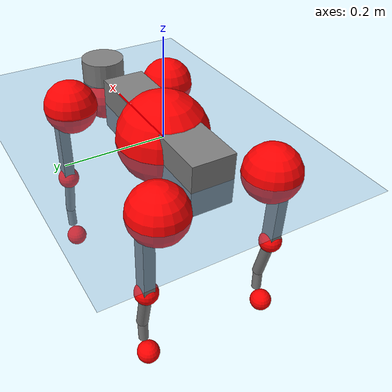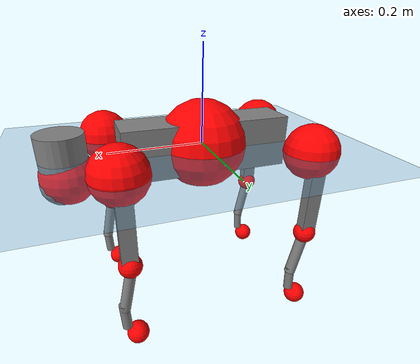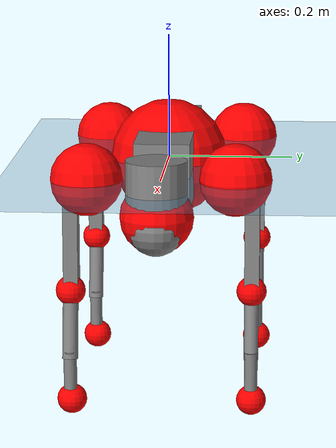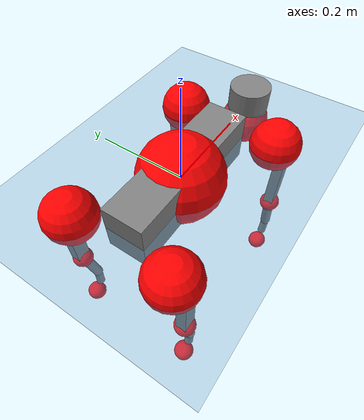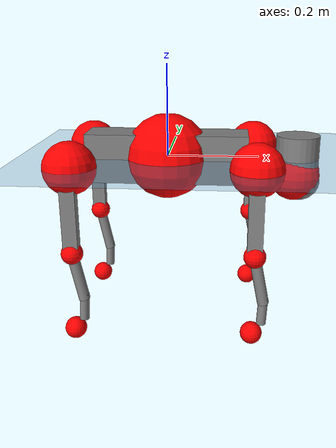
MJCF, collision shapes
<mujoco model="go2">
  <compiler angle="radian" assetdir="assets" balanceinertia="true" inertiafromgeom="false"/>

  <option timestep="0.005" density="1.2" viscosity="2e-05"/>

  <size nkey="1"/>

  <visual>
    <quality shadowsize="8192"/>
    <map shadowclip="0.5"/>
  </visual>

  <default>
    <default class="/">
      <geom contype="0" conaffinity="0" group="1" solref="-1000 -80"/>
      <site size="0.01 0.005 0.005" group="5"/>
      <general forcelimited="true" biastype="affine" gainprm="20" biasprm="0 -20 -0.5"/>
      <default class="go2">
        <joint armature="0.01" damping="0.01" frictionloss="0.2"/>
        <geom condim="1" margin="0.001"/>
        <default class="visual">
          <geom type="mesh" group="2"/>
        </default>
        <default class="collision">
          <geom group="3"/>
          <default class="foot">
            <geom size="0.022 0 0" condim="6" priority="1" friction="0.8 0.02 0.01" solimp="0.015 1 0.022"/>
          </default>
        </default>
        <default class="reward_collision_sphere">
          <geom group="5" rgba="1 0 0 1"/>
        </default>
      </default>
    </default>
  </default>

  <asset>
    <texture type="skybox" colorspace="auto" name="//unnamed_texture_0" builtin="gradient" rgb1="0.95 0.95 0.95" rgb2="0.95 0.95 0.95" width="100" height="600"/>
    <texture type="2d" colorspace="auto" name="texplane" builtin="checker" rgb1="0.345 0.575 0.748" rgb2="0.345 0.575 0.748" markrgb="1 1 1" width="512" height="512"/>
    <material name="MatPlane" class="/" texture="texplane" texuniform="true" texrepeat="2 2" specular="0.9"/>
    <material name="metal" class="/" rgba="0.9 0.95 0.95 1"/>
    <material name="black" class="/" rgba="0 0 0 1"/>
    <material name="white" class="/"/>
    <material name="gray" class="/" rgba="0.671705 0.692426 0.77427 1"/>
    <mesh name="base_0" class="/" file="base_0.obj"/>
    <mesh name="base_1" class="/" file="base_1.obj"/>
    <mesh name="base_2" class="/" file="base_2.obj"/>
    <mesh name="base_3" class="/" file="base_3.obj"/>
    <mesh name="base_4" class="/" file="base_4.obj"/>
    <mesh name="hip_0" class="/" file="hip_0.obj"/>
    <mesh name="hip_1" class="/" file="hip_1.obj"/>
    <mesh name="thigh_0" class="/" file="thigh_0.obj"/>
    <mesh name="thigh_1" class="/" file="thigh_1.obj"/>
    <mesh name="thigh_mirror_0" class="/" file="thigh_mirror_0.obj"/>
    <mesh name="thigh_mirror_1" class="/" file="thigh_mirror_1.obj"/>
    <mesh name="calf_0" class="/" file="calf_0.obj"/>
    <mesh name="calf_1" class="/" file="calf_1.obj"/>
    <mesh name="calf_mirror_0" class="/" file="calf_mirror_0.obj"/>
    <mesh name="calf_mirror_1" class="/" file="calf_mirror_1.obj"/>
    <mesh name="foot" class="/" file="foot.obj"/>
  </asset>

  <worldbody>
    <geom name="floor" class="/" size="100 100 0.125" type="plane" group="0" material="MatPlane"/>
    <light name="toplight_shadow" class="/" pos="0 0 5" dir="0.0990148 0.0990148 -0.990148" type="directional" ambient="0.04 0.04 0.04" diffuse="0.55 0.55 0.55" specular="0.12 0.12 0.12"/>
    <light name="toplight_fill" class="/" pos="0 0 5" dir="0.0990148 0.0990148 -0.990148" type="directional" castshadow="false" ambient="0.04 0.04 0.04" diffuse="0.3 0.3 0.3" specular="0.08 0.08 0.08"/>
    <body name="trunk" childclass="go2" pos="-0.00027529 -0.000102634 -0.000286196" quat="1 0.000248099 -0.000171342 -0.000217168">
      <inertial pos="0.0196511 -5.39741e-05 -0.00399665" quat="0.00142766 0.713649 -0.00271951 0.700497" mass="5.77557" diaginertia="0.105698 0.0915185 0.00985713"/>
      <joint name="//unnamed_joint_0" type="free" armature="0" damping="0" frictionloss="0"/>
      <geom name="//unnamed_geom_1" class="visual" material="black" mesh="base_0"/>
      <geom name="//unnamed_geom_2" class="visual" material="black" mesh="base_1"/>
      <geom name="//unnamed_geom_3" class="visual" material="black" mesh="base_2"/>
      <geom name="//unnamed_geom_4" class="visual" material="white" mesh="base_3"/>
      <geom name="//unnamed_geom_5" class="visual" material="gray" mesh="base_4"/>
      <geom name="trunk_1" class="collision" size="0.176769 0.0439337 0.0535663" type="box"/>
      <geom name="trunk_2" class="collision" size="0.046988 0.0422892" pos="0.284595 0 0.00833398" type="cylinder"/>
      <geom name="trunk_3" class="collision" size="0.0441687" pos="0.292584 0 -0.0500039"/>
      <geom name="//unnamed_geom_9" class="reward_collision_sphere" size="0.0939759"/>
      <geom name="//unnamed_geom_10" class="reward_collision_sphere" size="0.0563856" pos="0.279603 0 -0.0375029"/>
      <site name="imu" pos="-0.0227329 -7.20695e-05 0.0325803" size="0.00939759"/>
      <camera name="track" pos="0 -1.9746 0" quat="0.707107 0.707107 0 0" mode="trackcom"/>
      <camera name="ego_camera" pos="0.311557 0 0.0375029" quat="-0.5 -0.5 0.5 0.5"/>
      <body name="FL_hip" pos="0.193151 0.0467252 0.00253954" quat="1 0.000160833 0.000168114 -7.18333e-05">
        <inertial pos="-0.00536249 0.00273295 0.000141777" quat="0.496899 0.499656 0.505323 0.49808" mass="0.547472" diaginertia="0.000865817 0.00055185 0.000189984"/>
        <joint name="FL_hip_joint" pos="0 0 0" axis="1 0.000397257 0.000807101" stiffness="0.00101455" range="-1.05005 1.03757" armature="0.00927856" damping="0.00194697" frictionloss="0.195634"/>
        <geom name="//unnamed_geom_11" class="visual" material="metal" mesh="hip_0"/>
        <geom name="//unnamed_geom_12" class="visual" material="gray" mesh="hip_1"/>
        <geom name="//unnamed_geom_13" class="collision" size="0.0432289 0.0187952" pos="0 0.0789839 0" quat="0.707107 0.707107 0 0" type="cylinder"/>
        <geom name="//unnamed_geom_14" class="reward_collision_sphere" size="0.0563856" pos="0 0.0691109 0"/>
        <body name="FL_thigh" pos="0.000365641 0.0949489 0.000992041" quat="1 5.64688e-05 0.000169676 -7.74701e-05">
          <inertial pos="-0.00407236 -0.0218131 -0.0280218" quat="0.830203 0.0843726 -0.0183407 0.550733" mass="0.965943" diaginertia="0.0059086 0.0054156 0.000353811"/>
          <joint name="FL_thigh_joint" pos="0 0 0" axis="0.00800648 0.999967 0.00125682" stiffness="0.00404498" range="-1.56465 3.4765" armature="0.00923712" damping="0.005149" frictionloss="0.196686"/>
          <geom name="//unnamed_geom_15" class="visual" material="metal" mesh="thigh_0"/>
          <geom name="//unnamed_geom_16" class="visual" material="gray" mesh="thigh_1"/>
          <geom name="//unnamed_geom_17" class="collision" size="0.100084 0.0115121 0.0159759" pos="0 0 -0.0887569" quat="0.707107 0 0.707107 0" type="box"/>
          <body name="FL_calf" pos="-0.000707384 -0.000558183 -0.177893" quat="1 4.85638e-05 0.000168579 -8.25451e-05">
            <inertial pos="0.00615332 -3.54423e-05 -0.116336" quat="0.710681 0.0015242 -0.00509445 0.703495" mass="0.19919" diaginertia="0.00147271 0.00136406 2.13582e-05"/>
            <joint name="FL_calf_joint" pos="0 0 0" axis="0.00346141 0.999994 -0.00094951" range="-2.74202 -0.832125" armature="0.00931805" damping="0.000788683" frictionloss="0.189869"/>
            <geom name="//unnamed_geom_18" class="visual" material="gray" mesh="calf_0"/>
            <geom name="//unnamed_geom_19" class="visual" material="black" mesh="calf_1"/>
            <geom name="FL_calf0" class="collision" size="0.0112771 0.0563856" pos="0.00798864 0 -0.0500039" quat="0.994493 0 -0.104807 0" type="cylinder"/>
            <geom name="//unnamed_geom_21" class="collision" size="0.0103374 0.0305422" pos="0.0199716 0 -0.123343" quat="0.999688 0 0.0249974 0" type="cylinder"/>
            <geom name="//unnamed_geom_22" class="visual" pos="0 0 -0.177514" quat="1 0 0 0" material="black" mesh="foot"/>
            <geom name="FL_foot" class="foot" size="0.0184637" pos="-0.00199716 0 -0.177514"/>
            <geom name="//unnamed_geom_24" class="reward_collision_sphere" size="0.023494"/>
            <geom name="//unnamed_geom_25" class="reward_collision_sphere" size="0.023494" pos="-0.00199716 0 -0.177514"/>
            <site name="FL_foot" class="foot" pos="-0.00199716 0 -0.177514" size="0.00939759"/>
          </body>
        </body>
      </body>
      <body name="FR_hip" pos="0.193299 -0.046205 0.000662494" quat="1 -0.000153817 1.77808e-05 3.00175e-05">
        <inertial pos="-0.00431767 -0.00317058 0.000513581" quat="0.501548 0.504712 0.500198 0.493474" mass="0.567556" diaginertia="0.000886699 0.000565939 0.000195398"/>
        <joint name="FR_hip_joint" pos="0 0 0" axis="0.999998 -0.00125934 -0.00158849" range="-1.03921 1.046" armature="0.00951922" damping="0.0123984" frictionloss="0.184188"/>
        <geom name="//unnamed_geom_26" class="visual" pos="0 1.34072e-09 5.75061e-08" quat="4.63268e-05 1 0 0" material="metal" mesh="hip_0"/>
        <geom name="//unnamed_geom_27" class="visual" pos="0 2.17346e-09 -1.42235e-07" quat="4.63268e-05 1 0 0" material="gray" mesh="hip_1"/>
        <geom name="//unnamed_geom_28" class="collision" size="0.0432289 0.0187952" pos="0 -0.0789839 0" quat="0.707107 0.707107 0 0" type="cylinder"/>
        <geom name="//unnamed_geom_29" class="reward_collision_sphere" size="0.0563856" pos="0 -0.0691109 0"/>
        <body name="FR_thigh" pos="-0.000457148 -0.0939834 9.76089e-05" quat="1 -3.74852e-06 -3.76916e-05 -0.000111678">
          <inertial pos="-0.00281857 0.0221997 -0.0261785" quat="0.555282 -0.0214414 0.0847079 0.827059" mass="0.945505" diaginertia="0.00593468 0.00545413 0.000353629"/>
          <joint name="FR_thigh_joint" pos="0 0 0" axis="-0.00261579 -0.999996 0.000448669" stiffness="0.000213217" range="-3.4962 1.56049" armature="0.00977129" damping="0.0150827" frictionloss="0.181944"/>
          <geom name="//unnamed_geom_30" class="visual" material="metal" mesh="thigh_mirror_0"/>
          <geom name="//unnamed_geom_31" class="visual" material="gray" mesh="thigh_mirror_1"/>
          <geom name="//unnamed_geom_32" class="collision" size="0.100084 0.0115121 0.0159759" pos="0 0 -0.0887569" quat="0.707107 0 0.707107 0" type="box"/>
          <body name="FR_calf" pos="0.000642817 -0.00133297 -0.177395" quat="1 -7.65282e-06 0.000453934 0.000152821">
            <inertial pos="0.00681022 0.000777107 -0.11803" quat="0.700829 -0.00386283 0.00421581 0.713306" mass="0.197021" diaginertia="0.00146111 0.00137944 2.12458e-05"/>
            <joint name="FR_calf_joint" pos="0 0 0" axis="-0.00127698 -0.999989 0.00446981" range="0.823406 2.74066" armature="0.00924172" damping="0.0120442" frictionloss="0.180933"/>
            <geom name="//unnamed_geom_33" class="visual" material="gray" mesh="calf_mirror_0"/>
            <geom name="//unnamed_geom_34" class="visual" material="black" mesh="calf_mirror_1"/>
            <geom name="FR_calf0" class="collision" size="0.0122169 0.0563856" pos="0.0099858 0 -0.0500039" quat="0.995004 0 -0.0998334 0" type="cylinder"/>
            <geom name="//unnamed_geom_36" class="collision" size="0.0103374 0.0305422" pos="0.0199716 0 -0.123343" quat="0.999688 0 0.0249974 0" type="cylinder"/>
            <geom name="//unnamed_geom_37" class="visual" pos="0 0 -0.177514" quat="1 0 0 0" material="black" mesh="foot"/>
            <geom name="FR_foot" class="foot" size="0.0216971" pos="-0.00199716 0 -0.177514"/>
            <geom name="//unnamed_geom_39" class="reward_collision_sphere" size="0.023494"/>
            <geom name="//unnamed_geom_40" class="reward_collision_sphere" size="0.023494" pos="-0.00199716 0 -0.177514"/>
            <site name="FR_foot" class="foot" pos="-0.00199716 0 -0.177514" size="0.00939759"/>
          </body>
        </body>
      </body>
      <body name="RL_hip" pos="-0.193001 0.0467603 -0.00126316" quat="1 -8.67028e-06 -1.91072e-05 3.18317e-06">
        <inertial pos="0.00523994 0.00144877 -0.00146176" quat="0.504814 0.499315 0.497484 0.498355" mass="0.567192" diaginertia="0.000900832 0.000560902 0.000196924"/>
        <joint name="RL_hip_joint" pos="0 0 0" axis="-0.999794 -0.0193061 0.00631687" stiffness="0.00387318" range="-1.05114 1.04367" armature="0.0093684" damping="0.00475498" frictionloss="0.187379"/>
        <geom name="//unnamed_geom_41" class="visual" pos="-1.439e-09 0 -2.82077e-07" quat="4.63268e-05 0 1 0" material="metal" mesh="hip_0"/>
        <geom name="//unnamed_geom_42" class="visual" pos="-2.33279e-09 0 -2.50162e-07" quat="4.63268e-05 0 1 0" material="gray" mesh="hip_1"/>
        <geom name="//unnamed_geom_43" class="collision" size="0.0432289 0.0187952" pos="0 0.0789839 0" quat="0.707107 0.707107 0 0" type="cylinder"/>
        <geom name="//unnamed_geom_44" class="reward_collision_sphere" size="0.0563856" pos="0 0.0691109 0"/>
        <body name="RL_thigh" pos="0.000163868 0.0943353 -0.00126724" quat="1 0.000245288 -0.000123262 -9.4209e-05">
          <inertial pos="-0.00489282 -0.0221611 -0.0281272" quat="0.829888 0.0839943 -0.0195981 0.551224" mass="0.971644" diaginertia="0.00587845 0.00547862 0.00035458"/>
          <joint name="RL_thigh_joint" pos="0 0 0" axis="0.000659843 0.999994 -0.00336639" stiffness="0.0050919" range="-0.505507 4.55477" armature="0.00963848" damping="0.00845117" frictionloss="0.186962"/>
          <geom name="//unnamed_geom_45" class="visual" material="metal" mesh="thigh_0"/>
          <geom name="//unnamed_geom_46" class="visual" material="gray" mesh="thigh_1"/>
          <geom name="//unnamed_geom_47" class="collision" size="0.100084 0.0115121 0.0159759" pos="0 0 -0.0887569" quat="0.707107 0 0.707107 0" type="box"/>
          <body name="RL_calf" pos="0.00113475 -0.0013538 -0.177623" quat="1 -0.000173013 -0.000163673 3.61025e-06">
            <inertial pos="0.00540629 -0.000165497 -0.117562" quat="0.709157 -0.00231093 -0.00402773 0.705035" mass="0.203366" diaginertia="0.00151902 0.00139709 2.17121e-05"/>
            <joint name="RL_calf_joint" pos="0 0 0" axis="0.00279311 0.999976 0.00627386" range="-2.72074 -0.82326" armature="0.00966829" damping="0.00209886" frictionloss="0.189656"/>
            <geom name="//unnamed_geom_48" class="visual" material="gray" mesh="calf_0"/>
            <geom name="//unnamed_geom_49" class="visual" material="black" mesh="calf_1"/>
            <geom name="RL_calf0" class="collision" size="0.0122169 0.0563856" pos="0.0099858 0 -0.0500039" quat="0.995004 0 -0.0998334 0" type="cylinder"/>
            <geom name="//unnamed_geom_51" class="collision" size="0.0103374 0.0305422" pos="0.0199716 0 -0.123343" quat="0.999688 0 0.0249974 0" type="cylinder"/>
            <geom name="//unnamed_geom_52" class="visual" pos="0 0 -0.177514" quat="1 0 0 0" material="black" mesh="foot"/>
            <geom name="RL_foot" class="foot" size="0.0181915" pos="-0.00199716 0 -0.177514"/>
            <geom name="//unnamed_geom_54" class="reward_collision_sphere" size="0.023494"/>
            <geom name="//unnamed_geom_55" class="reward_collision_sphere" size="0.023494" pos="-0.00199716 0 -0.177514"/>
            <site name="RL_foot" class="foot" pos="-0.00199716 0 -0.177514" size="0.00939759"/>
          </body>
        </body>
      </body>
      <body name="RR_hip" pos="-0.19186 -0.0456022 -0.00207096" quat="1 1.93845e-05 -0.000249109 -3.59614e-05">
        <inertial pos="0.00619386 -0.00282444 -0.000729366" quat="0.503522 0.496551 0.499719 0.500184" mass="0.553397" diaginertia="0.000864779 0.000552328 0.00018989"/>
        <joint name="RR_hip_joint" pos="0 0 0" axis="-0.999995 0.00305705 0.00113681" range="-1.05091 1.02991" armature="0.00968457" damping="0.00836995" frictionloss="0.187728"/>
        <geom name="//unnamed_geom_56" class="visual" pos="1.43861e-09 1.34072e-09 -3.39583e-07" quat="2.14617e-09 4.63268e-05 4.63268e-05 -1" material="metal" mesh="hip_0"/>
        <geom name="//unnamed_geom_57" class="visual" pos="2.33375e-09 2.17346e-09 -1.07927e-07" quat="2.14617e-09 4.63268e-05 4.63268e-05 -1" material="gray" mesh="hip_1"/>
        <geom name="//unnamed_geom_58" class="collision" size="0.0432289 0.0187952" pos="0 -0.0789839 0" quat="0.707107 0.707107 0 0" type="cylinder"/>
        <geom name="//unnamed_geom_59" class="reward_collision_sphere" size="0.0563856" pos="0 -0.0691109 0"/>
        <body name="RR_thigh" pos="0.00106174 -0.094896 -0.00146139" quat="1 -8.07611e-06 -1.82722e-05 -1.25535e-05">
          <inertial pos="-0.00341821 0.0211733 -0.026968" quat="0.551751 -0.0197985 0.084697 0.829461" mass="0.973095" diaginertia="0.0060103 0.00555061 0.000355908"/>
          <joint name="RR_thigh_joint" pos="0 0 0" axis="0.00366898 -0.999973 -0.00635455" range="-4.55696 0.523459" armature="0.00915864" damping="0.0122814" frictionloss="0.188262"/>
          <geom name="//unnamed_geom_60" class="visual" material="metal" mesh="thigh_mirror_0"/>
          <geom name="//unnamed_geom_61" class="visual" material="gray" mesh="thigh_mirror_1"/>
          <geom name="//unnamed_geom_62" class="collision" size="0.100084 0.0115121 0.0159759" pos="0 0 -0.0887569" quat="0.707107 0 0.707107 0" type="box"/>
          <body name="RR_calf" pos="0.000131343 0.000330804 -0.178188" quat="1 8.83442e-05 -0.000169701 0.000132804">
            <inertial pos="0.00584746 0.00139737 -0.117793" quat="0.703444 -0.00680606 0.00151201 0.710716" mass="0.200928" diaginertia="0.00149515 0.00137237 2.15716e-05"/>
            <joint name="RR_calf_joint" pos="0 0 0" axis="0.000237884 -1 0.000518115" range="0.832718 2.73396" armature="0.00947819" damping="0.0113321" frictionloss="0.18114"/>
            <geom name="//unnamed_geom_63" class="visual" material="gray" mesh="calf_mirror_0"/>
            <geom name="//unnamed_geom_64" class="visual" material="black" mesh="calf_mirror_1"/>
            <geom name="RR_calf0" class="collision" size="0.0122169 0.0563856" pos="0.0099858 0 -0.0500039" quat="0.995004 0 -0.0998334 0" type="cylinder"/>
            <geom name="//unnamed_geom_66" class="collision" size="0.0103374 0.0305422" pos="0.0199716 0 -0.123343" quat="0.999688 0 0.0249974 0" type="cylinder"/>
            <geom name="//unnamed_geom_67" class="visual" pos="0 0 -0.177514" quat="1 0 0 0" material="black" mesh="foot"/>
            <geom name="RR_foot" class="foot" size="0.0223507" pos="-0.00199716 0 -0.177514"/>
            <geom name="//unnamed_geom_69" class="reward_collision_sphere" size="0.023494"/>
            <geom name="//unnamed_geom_70" class="reward_collision_sphere" size="0.023494" pos="-0.00199716 0 -0.177514"/>
            <site name="RR_foot" class="foot" pos="-0.00199716 0 -0.177514" size="0.00939759"/>
          </body>
        </body>
      </body>
    </body>
  </worldbody>

  <contact>
    <pair class="/" geom1="floor" geom2="FL_foot" name="//unnamed_contact_0"/>
    <pair class="/" geom1="floor" geom2="FR_foot" name="//unnamed_contact_1"/>
    <pair class="/" geom1="floor" geom2="RL_foot" name="//unnamed_contact_2"/>
    <pair class="/" geom1="floor" geom2="RR_foot" name="//unnamed_contact_3"/>
  </contact>

  <actuator>
    <general name="FL_hip" class="/" joint="FL_hip_joint" forcerange="-22.573 22.573" gainprm="19.3185" biasprm="0 -19.3185 -0.482214"/>
    <general name="FL_thigh" class="/" joint="FL_thigh_joint" forcerange="-21.6768 21.6768" gainprm="19.3185" biasprm="0 -19.3185 -0.482214"/>
    <general name="FL_calf" class="/" joint="FL_calf_joint" forcerange="-43.0009 43.0009" gainprm="19.3185" biasprm="0 -19.3185 -0.482214"/>
    <general name="FR_hip" class="/" joint="FR_hip_joint" forcerange="-22.1861 22.1861" gainprm="19.3185" biasprm="0 -19.3185 -0.482214"/>
    <general name="FR_thigh" class="/" joint="FR_thigh_joint" forcerange="-21.6343 21.6343" gainprm="19.3185" biasprm="0 -19.3185 -0.482214"/>
    <general name="FR_calf" class="/" joint="FR_calf_joint" forcerange="-41.6614 41.6614" gainprm="19.3185" biasprm="0 -19.3185 -0.482214"/>
    <general name="RL_hip" class="/" joint="RL_hip_joint" forcerange="-22.2265 22.2265" gainprm="19.3185" biasprm="0 -19.3185 -0.482214"/>
    <general name="RL_thigh" class="/" joint="RL_thigh_joint" forcerange="-22.8437 22.8437" gainprm="19.3185" biasprm="0 -19.3185 -0.482214"/>
    <general name="RL_calf" class="/" joint="RL_calf_joint" forcerange="-41.9102 41.9102" gainprm="19.3185" biasprm="0 -19.3185 -0.482214"/>
    <general name="RR_hip" class="/" joint="RR_hip_joint" forcerange="-21.9942 21.9942" gainprm="19.3185" biasprm="0 -19.3185 -0.482214"/>
    <general name="RR_thigh" class="/" joint="RR_thigh_joint" forcerange="-22.3035 22.3035" gainprm="19.3185" biasprm="0 -19.3185 -0.482214"/>
    <general name="RR_calf" class="/" joint="RR_calf_joint" forcerange="-43.1452 43.1452" gainprm="19.3185" biasprm="0 -19.3185 -0.482214"/>
  </actuator>

  <sensor>
    <gyro site="imu" name="imu_angular_velocity"/>
    <velocimeter site="imu" name="imu_linear_velocity"/>
    <framelinvel objtype="site" objname="FL_foot" name="FL_foot_global_linear_velocity"/>
    <framelinvel objtype="site" objname="FR_foot" name="FR_foot_global_linear_velocity"/>
    <framelinvel objtype="site" objname="RL_foot" name="RL_foot_global_linear_velocity"/>
    <framelinvel objtype="site" objname="RR_foot" name="RR_foot_global_linear_velocity"/>
  </sensor>

  <keyframe>
    <key name="home" qpos="0 0 0.325 1 0 0 0 0.1 0.8 -1.5 -0.1 -0.8 1.5 -0.1 0.8 -1.5 0.1 -0.8 1.5"/>
  </keyframe>
</mujoco>
